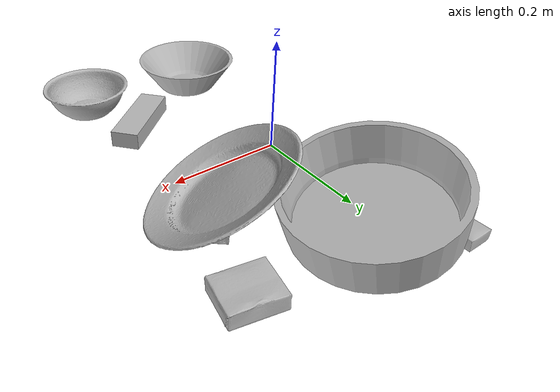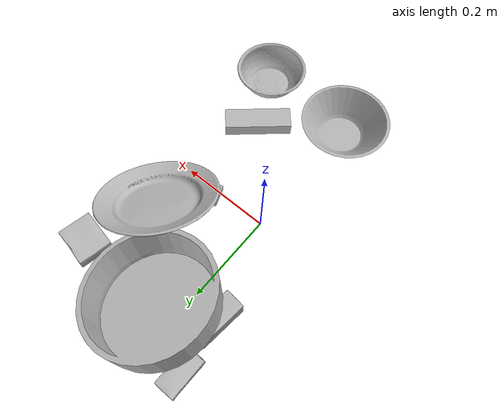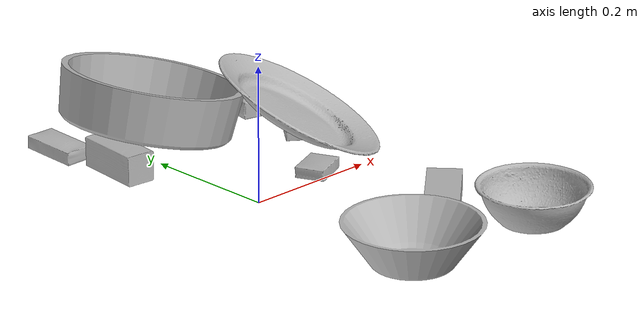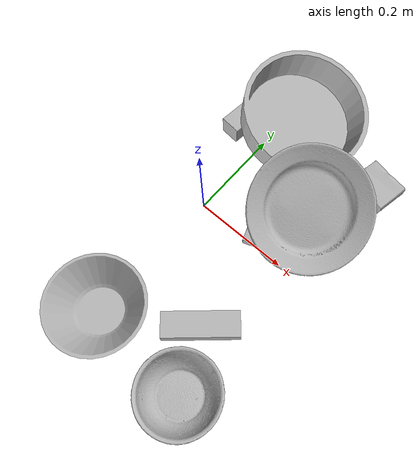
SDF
<sdf version="1.4">
  <world name="default">
    <light name="light1" type="point">
      <pose>0 0 1 0 0 0</pose>
      <diffuse>3 3 3 1</diffuse>
      <specular>3 3 3 1</specular>
    </light>
    <light name="light2" type="point">
      <pose>0 0.5 2 0 0 0</pose>
      <diffuse>1 1 1 1</diffuse>
      <specular>1 1 1 1</specular>
    </light>
    <light name="light3" type="point">
      <pose>0 0.5 2 0 0 0</pose>
      <diffuse>3 3 3 1</diffuse>
      <specular>3 3 3 1</specular>
    </light>
    <scene>
      <ambient>0.7 0.7 0.7</ambient>
    </scene>
    <model name="box1">
      <link name="link_box1">
        <collision name="default">
          <geometry>
            <mesh>
              <uri>model://jenga/collision_meshes/collision.obj</uri>
              <scale>1.0 1.0 1.0</scale>
            </mesh>
          </geometry>
          <surface>
            <friction>
              <ode>
                <mu>0.5</mu>
                <mu2>0.5</mu2>
              </ode>
            </friction>
          <contact>
        <ode>
            <max_vel>0</max_vel>
            <min_depth>0.0001</min_depth>
            <kp>1e8</kp>
        </ode>
    </contact></surface>
        </collision>
        <visual name="default">
          <geometry>
            <mesh>
              <uri>model://jenga/visual_meshes/visual.dae</uri>
              <scale>1.0 1.0 1.0</scale>
            </mesh>
          </geometry>
        </visual>
        <inertial>
          <mass>0.21843092143535614</mass>
          <pose>-2.502855807051674e-07 -0.00010250011109746993 -4.092339804628864e-05 0.0 -7.342154049184251e-07 0.0</pose>
          <inertia>
            <ixx>6.0445138e-05</ixx>
            <iyy>0.0004095746</iyy>
            <izz>0.00043725572</izz>
            <ixy>0</ixy>
            <ixz>0</ixz>
            <iyz>0</iyz>
          </inertia>
        </inertial>
      </link>
      <pose>0.16402259469032288 -0.19202984869480133 0.014999998733401299 6.454431674509958e-11 -5.575308251946281e-09 -2.416861508108329</pose>
    </model>
    <model name="box11">
      <link name="link_box11">
        <collision name="default">
          <geometry>
            <mesh>
              <uri>model://pudding_box/collision_meshes/collision.obj</uri>
              <scale>0.5 0.5 0.5</scale>
            </mesh>
          </geometry>
          <surface>
            <friction>
              <ode>
                <mu>0.5</mu>
                <mu2>0.5</mu2>
              </ode>
            </friction>
          <contact>
        <ode>
            <max_vel>0</max_vel>
            <min_depth>0.0001</min_depth>
            <kp>1e8</kp>
        </ode>
    </contact></surface>
        </collision>
        <visual name="default">
          <geometry>
            <mesh>
              <uri>model://pudding_box/visual_meshes/visual.dae</uri>
              <scale>0.5 0.5 0.5</scale>
            </mesh>
          </geometry>
        </visual>
        <inertial>
          <mass>0.04130476340651512</mass>
          <pose>0.00024474109522998333 0.00040339428232982755 -0.0002594413817860186 0.005213101341234124 -0.006603795469139562 0.020079830758209564</pose>
          <inertia>
            <ixx>1.1673226e-05</ixx>
            <iyy>7.85383e-06</iyy>
            <izz>1.723857e-05</izz>
            <ixy>0</ixy>
            <ixz>0</ixz>
            <iyz>0</iyz>
          </inertia>
        </inertial>
      </link>
      <pose>0.13143812119960785 0.019326165318489075 0.00986290443688631 0.02234852083018823 -0.0113916924549721 -1.2150289448577631</pose>
    </model>
    <model name="box2">
      <link name="link_box2">
        <collision name="default">
          <geometry>
            <mesh>
              <uri>model://gelatin_box/collision_meshes/collision.obj</uri>
              <scale>1.0 1.0 1.0</scale>
            </mesh>
          </geometry>
          <surface>
            <friction>
              <ode>
                <mu>0.5</mu>
                <mu2>0.5</mu2>
              </ode>
            </friction>
          <contact>
        <ode>
            <max_vel>0</max_vel>
            <min_depth>0.0001</min_depth>
            <kp>1e8</kp>
        </ode>
    </contact></surface>
        </collision>
        <visual name="default">
          <geometry>
            <mesh>
              <uri>model://gelatin_box/visual_meshes/visual.dae</uri>
              <scale>1.0 1.0 1.0</scale>
            </mesh>
          </geometry>
        </visual>
        <inertial>
          <mass>0.24153950810432434</mass>
          <pose>0.0004319618456065655 0.00011156871914863586 -0.0003640321083366871 -0.001050371984258798 -0.004755819621622892 0.016440559472145032</pose>
          <inertia>
            <ixx>0.00017050719</ixx>
            <iyy>0.00012179239</iyy>
            <izz>0.0002595499</izz>
            <ixy>0</ixy>
            <ixz>0</ixz>
            <iyz>0</iyz>
          </inertia>
        </inertial>
      </link>
      <pose>0.249222069978714 0.2641698718070984 0.015168316662311554 0.0055974554053540276 -0.007304536748843844 1.3728383625028238</pose>
    </model>
    <model name="box21">
      <link name="link_box21">
        <collision name="default">
          <geometry>
            <mesh>
              <uri>model://cracker_box/collision_meshes/collision.obj</uri>
              <scale>0.25 0.25 0.25</scale>
            </mesh>
          </geometry>
          <surface>
            <friction>
              <ode>
                <mu>0.5</mu>
                <mu2>0.5</mu2>
              </ode>
            </friction>
          <contact>
        <ode>
            <max_vel>0</max_vel>
            <min_depth>0.0001</min_depth>
            <kp>1e8</kp>
        </ode>
    </contact></surface>
        </collision>
        <visual name="default">
          <geometry>
            <mesh>
              <uri>model://cracker_box/visual_meshes/visual.dae</uri>
              <scale>0.25 0.25 0.25</scale>
            </mesh>
          </geometry>
        </visual>
        <inertial>
          <mass>0.04855586588382721</mass>
          <pose>0.00023660322767682374 6.358561222441494e-05 -0.00042573834070935845 -0.00031620783521113603 -0.01110649053142329 0.0025467954689779603</pose>
          <inertia>
            <ixx>7.719027e-06</ixx>
            <iyy>1.2745631e-05</iyy>
            <izz>1.8189185e-05</izz>
            <ixy>0</ixy>
            <ixz>0</ixz>
            <iyz>0</iyz>
          </inertia>
        </inertial>
      </link>
      <pose>0.2186857908964157 0.1360073983669281 0.009096027351915836 -0.01405013214741175 -0.005016989461654976 -0.6781727127639611</pose>
    </model>
    <model name="box3">
      <link name="link_box3">
        <collision name="default">
          <geometry>
            <mesh>
              <uri>model://wood_block/collision_meshes/collision.obj</uri>
              <scale>0.5 0.5 0.5</scale>
            </mesh>
          </geometry>
          <surface>
            <friction>
              <ode>
                <mu>0.5</mu>
                <mu2>0.5</mu2>
              </ode>
            </friction>
          <contact>
        <ode>
            <max_vel>0</max_vel>
            <min_depth>0.0001</min_depth>
            <kp>1e8</kp>
        </ode>
    </contact></surface>
        </collision>
        <visual name="default">
          <geometry>
            <mesh>
              <uri>model://wood_block/visual_meshes/visual.dae</uri>
              <scale>0.5 0.5 0.5</scale>
            </mesh>
          </geometry>
        </visual>
        <inertial>
          <mass>0.17342756688594818</mass>
          <pose>-2.906657982748584e-06 -0.000285404734313488 0.00013204291462898254 -0.052208426481931185 -0.005192696107352816 -0.006861379630616638</pose>
          <inertia>
            <ixx>5.8018082e-05</ixx>
            <iyy>0.00018327912</iyy>
            <izz>0.00018259356</izz>
            <ixy>0</ixy>
            <ixz>0</ixz>
            <iyz>0</iyz>
          </inertia>
        </inertial>
      </link>
      <pose>-0.0646757259964943 0.21484902501106262 0.022748855873942375 0.00345337988985196 0.008760792396643322 1.4681588434011483</pose>
    </model>
    <model name="box31">
      <link name="link_box31">
        <collision name="default">
          <geometry>
            <mesh>
              <uri>model://sugar_box/collision_meshes/collision.obj</uri>
              <scale>0.5 0.5 0.5</scale>
            </mesh>
          </geometry>
          <surface>
            <friction>
              <ode>
                <mu>0.5</mu>
                <mu2>0.5</mu2>
              </ode>
            </friction>
          <contact>
        <ode>
            <max_vel>0</max_vel>
            <min_depth>0.0001</min_depth>
            <kp>1e8</kp>
        </ode>
    </contact></surface>
        </collision>
        <visual name="default">
          <geometry>
            <mesh>
              <uri>model://sugar_box/visual_meshes/visual.dae</uri>
              <scale>0.5 0.5 0.5</scale>
            </mesh>
          </geometry>
        </visual>
        <inertial>
          <mass>0.102778859436512</mass>
          <pose>0.0005171863595023751 1.924554817378521e-05 -0.00018182402709499002 -0.00040462592244169 0.0010506634051582892 0.0026153783234817013</pose>
          <inertia>
            <ixx>2.1408765e-05</ixx>
            <iyy>6.919753e-05</iyy>
            <izz>8.2837694e-05</izz>
            <ixy>0</ixy>
            <ixz>0</ixz>
            <iyz>0</iyz>
          </inertia>
        </inertial>
      </link>
      <pose>-0.07681391388177872 0.3277934491634369 0.011399311944842339 0.0007750179954425644 -0.023432554681856756 1.5648797418673792</pose>
    </model>
    <model name="plate1">
      <link name="link_plate1">
        <collision name="default">
          <geometry>
            <mesh>
              <uri>model://pan_tefal/collision_meshes/collision.obj</uri>
              <scale>1.0 1.0 1.0</scale>
            </mesh>
          </geometry>
          <surface>
            <friction>
              <ode>
                <mu>0.5</mu>
                <mu2>0.5</mu2>
              </ode>
            </friction>
          <contact>
        <ode>
            <max_vel>0</max_vel>
            <min_depth>0.0001</min_depth>
            <kp>1e8</kp>
        </ode>
    </contact></surface>
        </collision>
        <visual name="default">
          <geometry>
            <mesh>
              <uri>model://pan_tefal/visual_meshes/visual.dae</uri>
              <scale>1.0 1.0 1.0</scale>
            </mesh>
          </geometry>
        </visual>
        <inertial>
          <mass>1.4199398756027222</mass>
          <pose>-0.00018002341676037759 3.278919029980898e-05 -0.00851493515074253 0.0008190238651519852 -0.0003301374854212985 -0.3318555266382279</pose>
          <inertia>
            <ixx>0.009801778</ixx>
            <iyy>0.009864969</iyy>
            <izz>0.01804318</izz>
            <ixy>0</ixy>
            <ixz>0</ixz>
            <iyz>0</iyz>
          </inertia>
        </inertial>
      </link>
      <pose>0.040456753224134445 0.26778358221054077 0.06496889889240265 0.22190606488394485 -0.07468098604545594 1.839651263239809</pose>
    </model>
    <model name="bowl1">
      <link name="link_bowl1">
        <collision name="default">
          <geometry>
            <mesh>
              <uri>model://bowl/collision_meshes/collision.obj</uri>
              <scale>1.0 1.0 1.0</scale>
            </mesh>
          </geometry>
          <surface>
            <friction>
              <ode>
                <mu>0.5</mu>
                <mu2>0.5</mu2>
              </ode>
            </friction>
          <contact>
        <ode>
            <max_vel>0</max_vel>
            <min_depth>0.0001</min_depth>
            <kp>1e8</kp>
        </ode>
    </contact></surface>
        </collision>
        <visual name="default">
          <geometry>
            <mesh>
              <uri>model://bowl/visual_meshes/visual.dae</uri>
              <scale>1.0 1.0 1.0</scale>
            </mesh>
          </geometry>
        </visual>
        <inertial>
          <mass>0.10393582284450531</mass>
          <pose>0.00020445296831894666 -0.001030207728035748 -0.0008042644476518035 -0.01576405922653839 0.014546845721322095 0.7140430703653545</pose>
          <inertia>
            <ixx>0.00023874876</ixx>
            <iyy>0.00023341418</iyy>
            <izz>0.00040165734</izz>
            <ixy>0</ixy>
            <ixz>0</ixz>
            <iyz>0</iyz>
          </inertia>
        </inertial>
      </link>
      <pose>0.2189333736896515 -0.3094763457775116 0.02778000570833683 -8.454202564551257e-09 -1.0253847423755573e-06 3.071318384624714</pose>
    </model>
    <model name="plate2">
      <link name="link_plate2">
        <collision name="default">
          <geometry>
            <mesh>
              <uri>model://plate/collision_meshes/collision.obj</uri>
              <scale>1.0 1.0 1.0</scale>
            </mesh>
          </geometry>
          <surface>
            <friction>
              <ode>
                <mu>0.5</mu>
                <mu2>0.5</mu2>
              </ode>
            </friction>
          <contact>
        <ode>
            <max_vel>0</max_vel>
            <min_depth>0.0001</min_depth>
            <kp>1e8</kp>
        </ode>
    </contact></surface>
        </collision>
        <visual name="default">
          <geometry>
            <mesh>
              <uri>model://plate/visual_meshes/visual.dae</uri>
              <scale>1.0 1.0 1.0</scale>
            </mesh>
          </geometry>
        </visual>
        <inertial>
          <mass>0.11643410474061966</mass>
          <pose>-0.0006044629844836891 0.000278257648460567 -0.001056199660524726 0.0022187586917557377 -0.0032254970862864826 0.45261837235677477</pose>
          <inertia>
            <ixx>0.00054468104</ixx>
            <iyy>0.0005394714</iyy>
            <izz>0.0010653147</izz>
            <ixy>0</ixy>
            <ixz>0</ixz>
            <iyz>0</iyz>
          </inertia>
        </inertial>
      </link>
      <pose>0.1828102320432663 0.11309392750263214 0.05660106614232063 -0.5084100570161293 -0.010775138219648739 -2.2724471782430715</pose>
    </model>
    <model name="bowl2">
      <link name="link_bowl2">
        <collision name="default">
          <geometry>
            <mesh>
              <uri>model://bowl_a/collision_meshes/collision.obj</uri>
              <scale>1.0 1.0 1.0</scale>
            </mesh>
          </geometry>
          <surface>
            <friction>
              <ode>
                <mu>0.5</mu>
                <mu2>0.5</mu2>
              </ode>
            </friction>
          <contact>
        <ode>
            <max_vel>0</max_vel>
            <min_depth>0.0001</min_depth>
            <kp>1e8</kp>
        </ode>
    </contact></surface>
        </collision>
        <visual name="default">
          <geometry>
            <mesh>
              <uri>model://bowl_a/visual_meshes/visual.dae</uri>
              <scale>1.0 1.0 1.0</scale>
            </mesh>
          </geometry>
        </visual>
        <inertial>
          <mass>0.4875580668449402</mass>
          <pose>0.00027867365861311555 4.73092841275502e-05 -0.0013765289913862944 -0.0009805446644095745 -0.0010938154105800495 -0.1912289991244328</pose>
          <inertia>
            <ixx>0.0013881001</ixx>
            <iyy>0.0013966226</iyy>
            <izz>0.0024687892</izz>
            <ixy>0</ixy>
            <ixz>0</ixz>
            <iyz>0</iyz>
          </inertia>
        </inertial>
      </link>
      <pose>-0.0017046990105882287 -0.29490435123443604 0.03038276731967926 -1.1678643265368054e-05 1.8760335449366124e-06 0.255081095912077</pose>
    </model>
  <physics type="ode">
      <max_contacts>50</max_contacts>
      <ode>
        <solver>
          <type>quick</type>
          <iters>75</iters>
        </solver>
        <constraints>
          <contact_max_correcting_vel>0</contact_max_correcting_vel>
          <contact_surface_layer>0</contact_surface_layer>
        </constraints>
      </ode>
    </physics></world>
</sdf>
